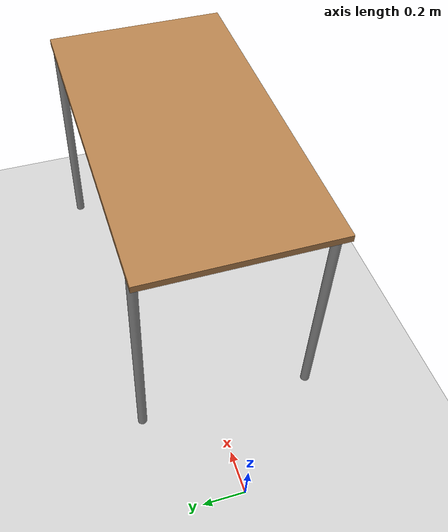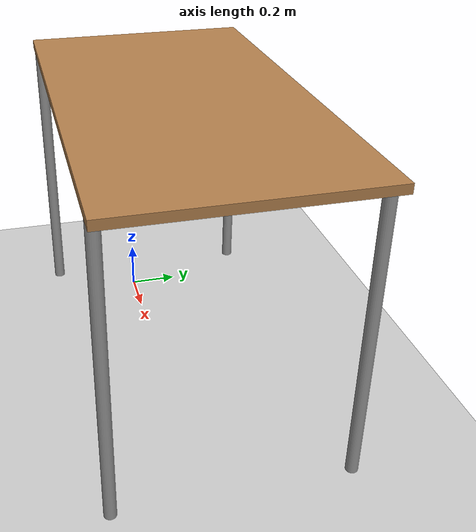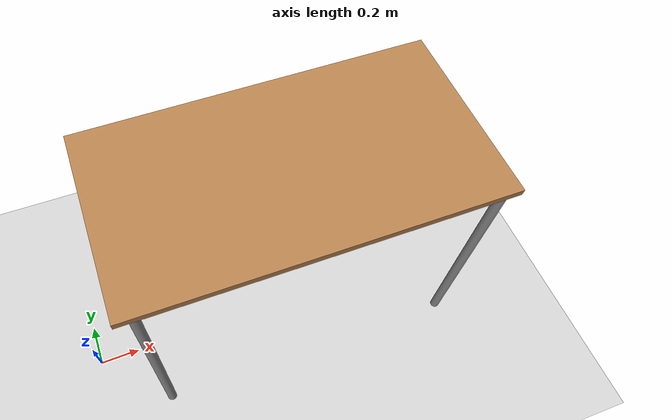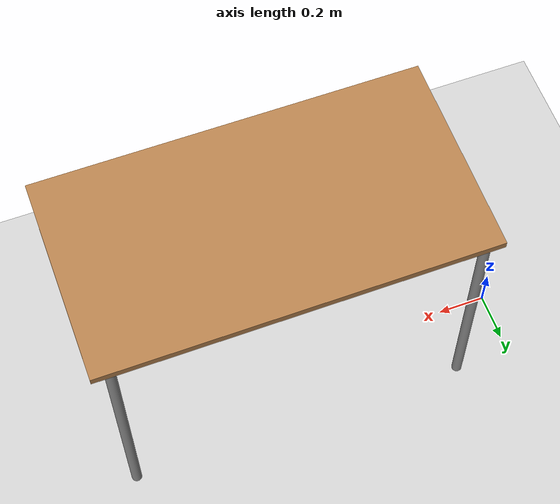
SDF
<?xml version="1.0" ?>
<sdf version="1.6">
  <world name="default">

    <!-- Light -->
    <include>
      <uri>model://sun</uri>
    </include>

    <!-- Ground plane -->
    <include>
      <uri>model://ground_plane</uri>
    </include>

    <!-- Table -->
    <include>
      <uri>model://table</uri>
      <name>test_table</name>
      <pose>1 0 0.3 0 0 0</pose>
    </include>

  </world>
</sdf>

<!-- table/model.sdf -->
<sdf version="1.5">
  <model name="table">
    <static>true</static>
    <link name="link">
      <collision name="surface">
        <pose>0 0 1.0 0 0 0</pose>
        <geometry>
          <box>
            <size>1.5 0.8 0.03</size>
          </box>
        </geometry>
        <surface>
          <friction>
            <ode>
              <mu>0.6</mu>
              <mu2>0.6</mu2>
            </ode>
          </friction>
        </surface>
      </collision>
      <visual name="visual1">
        <pose>0 0 1.0 0 0 0</pose>
        <geometry>
          <box>
            <size>1.5 0.8 0.03</size>
          </box>
        </geometry>
        <material>
          <script>
            <uri>model://media/materials/scripts/gazebo.material</uri>
            <name>Gazebo/Wood</name>
          </script>
        </material>
      </visual>
      <collision name="front_left_leg">
        <pose>0.68 0.38 0.5 0 0 0</pose>
        <geometry>
          <cylinder>
            <radius>0.02</radius>
            <length>1.0</length>
          </cylinder>
        </geometry>
      </collision>
      <visual name="front_left_leg">
        <pose>0.68 0.38 0.5 0 0 0</pose>
        <geometry>
          <cylinder>
            <radius>0.02</radius>
            <length>1.0</length>
          </cylinder>
        </geometry>
        <material>
          <script>
            <uri>model://media/materials/scripts/gazebo.material</uri>
            <name>Gazebo/Grey</name>
          </script>
        </material>
      </visual>
      <collision name="front_right_leg">
        <pose>0.68 -0.38 0.5 0 0 0</pose>
        <geometry>
          <cylinder>
            <radius>0.02</radius>
            <length>1.0</length>
          </cylinder>
        </geometry>
      </collision>
      <visual name="front_right_leg">
        <pose>0.68 -0.38 0.5 0 0 0</pose>
        <geometry>
          <cylinder>
            <radius>0.02</radius>
            <length>1.0</length>
          </cylinder>
        </geometry>
        <material>
          <script>
            <uri>model://media/materials/scripts/gazebo.material</uri>
            <name>Gazebo/Grey</name>
          </script>
        </material>
      </visual>
      <collision name="back_right_leg">
        <pose>-0.68 -0.38 0.5 0 0 0</pose>
        <geometry>
          <cylinder>
            <radius>0.02</radius>
            <length>1.0</length>
          </cylinder>
        </geometry>
      </collision>
      <visual name="back_right_leg">
        <pose>-0.68 -0.38 0.5 0 0 0</pose>
        <geometry>
          <cylinder>
            <radius>0.02</radius>
            <length>1.0</length>
          </cylinder>
        </geometry>
        <material>
          <script>
            <uri>model://media/materials/scripts/gazebo.material</uri>
            <name>Gazebo/Grey</name>
          </script>
        </material>
      </visual>
      <collision name="back_left_leg">
        <pose>-0.68 0.38 0.5 0 0 0</pose>
        <geometry>
          <cylinder>
            <radius>0.02</radius>
            <length>1.0</length>
          </cylinder>
        </geometry>
      </collision>
      <visual name="back_left_leg">
        <pose>-0.68 0.38 0.5 0 0 0</pose>
        <geometry>
          <cylinder>
            <radius>0.02</radius>
            <length>1.0</length>
          </cylinder>
        </geometry>
        <material>
          <script>
            <uri>model://media/materials/scripts/gazebo.material</uri>
            <name>Gazebo/Grey</name>
          </script>
        </material>
      </visual>
    </link>
  </model>
</sdf>
